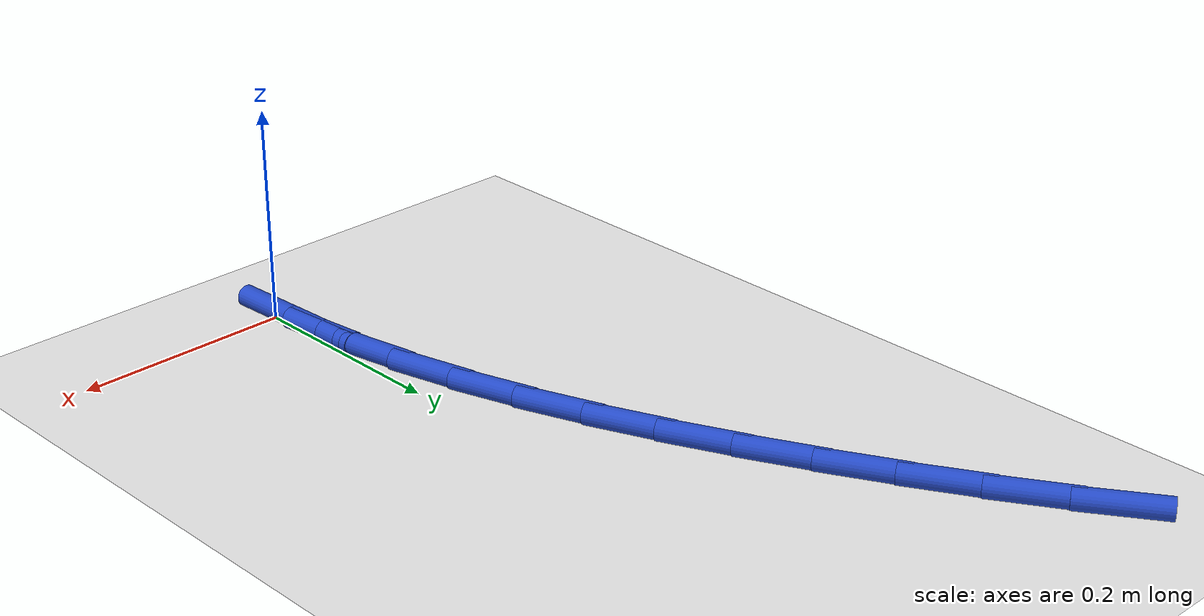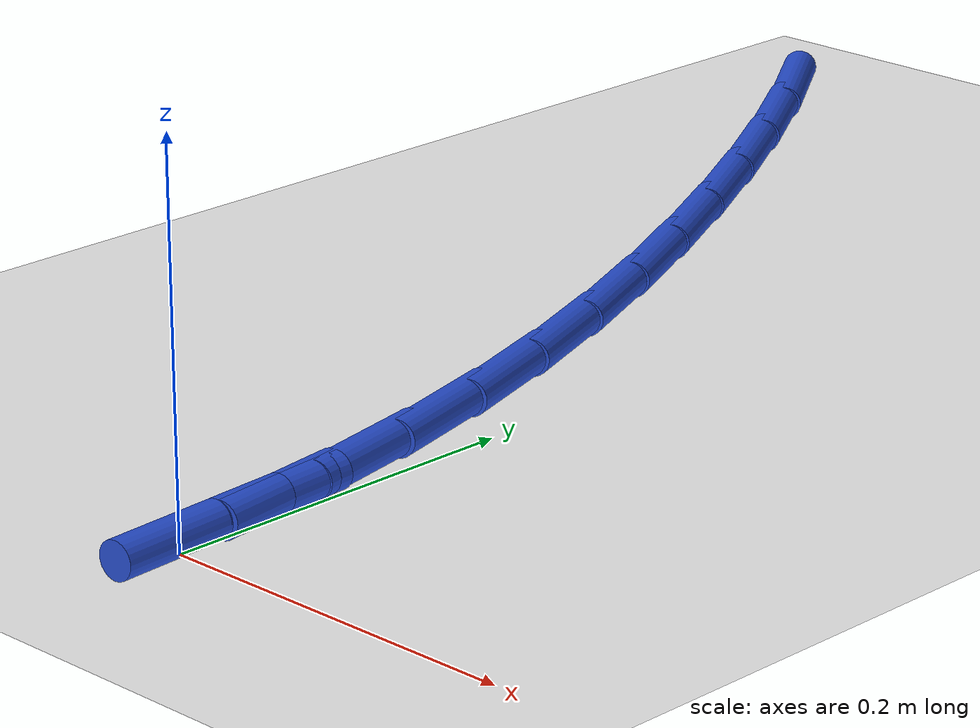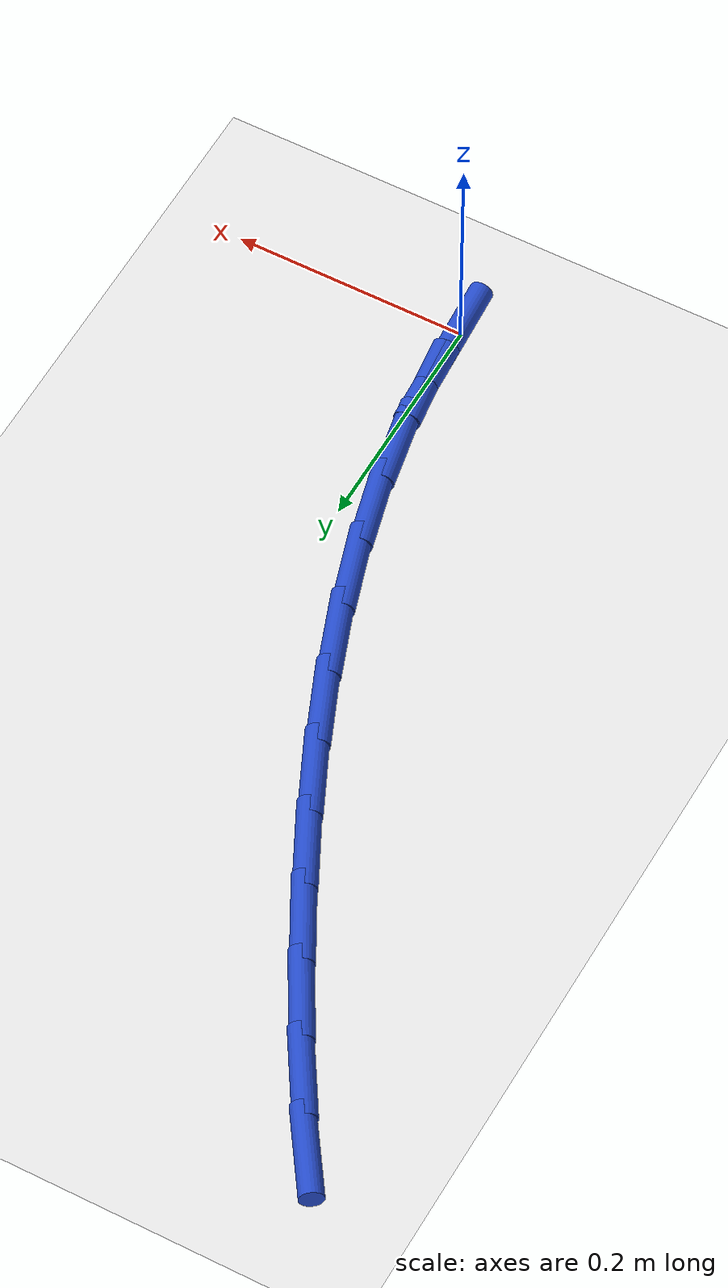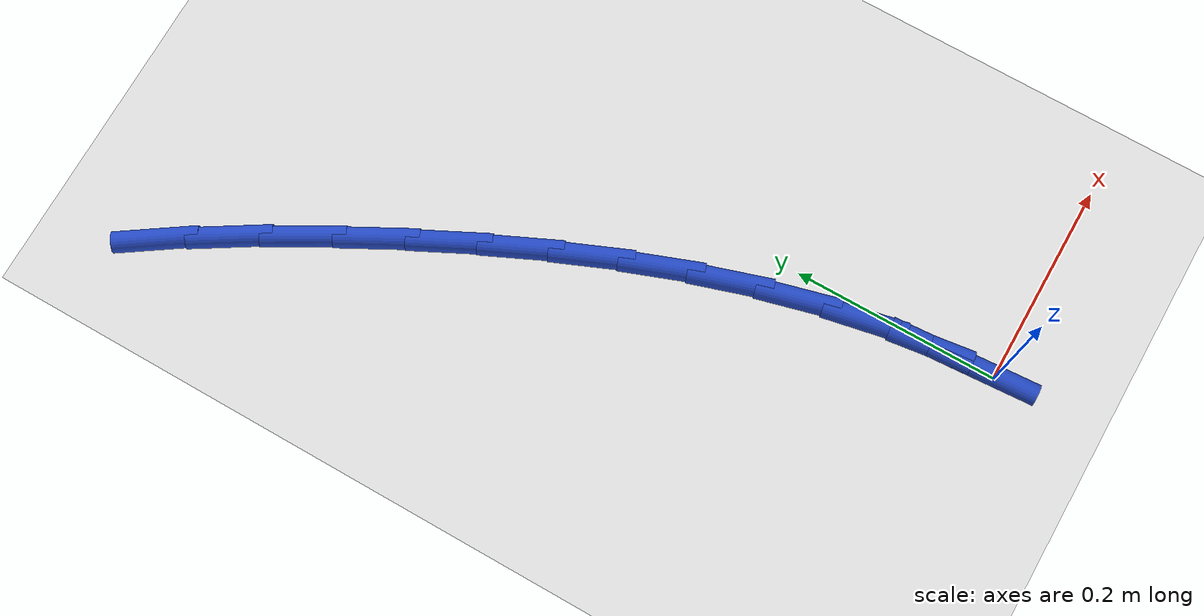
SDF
<sdf version="1.6">
 <world name="default">
  <model name="ground_plane">
   <static>1</static>
   <link name="link">
    <collision name="collision">
     <geometry><plane><normal>0 0 1</normal><size>100 100</size></plane></geometry>
     <surface><friction><ode><mu>100</mu><mu2>50</mu2></ode></friction></surface>
    </collision>
    <visual name="visual">
     <cast_shadows>0</cast_shadows>
     <geometry><plane><normal>0 0 1</normal><size>100 100</size></plane></geometry>
     <material>
      <script><uri>file://media/materials/scripts/gazebo.material</uri><name>Gazebo/WhiteGlow</name></script>
     </material>
    </visual>
   </link>
  </model>
  <model name="line">
   <link name="link_1">
    <pose>-0.00379045577076956 0.06364255817681445 0.01 0 1.57 -1.441906569052137</pose>
    <collision name="collision">
     <geometry><cylinder><radius>0.01</radius><length>0.08</length></cylinder></geometry>
    </collision>
    <visual name="visual">
     <material>
      <script><name>Gazebo/Blue</name><uri>file://media/materials/scripts/gazebo.material</uri></script>
     </material>
     <geometry><cylinder><radius>0.01</radius><length>0.08</length></cylinder></geometry>
    </visual>
   </link>
   <link name="link_2">
    <pose>-0.01193686798468814 0.12649666985539915 0.01 0 1.57 -1.3772078086457762</pose>
    <collision name="collision">
     <geometry><cylinder><radius>0.01</radius><length>0.08</length></cylinder></geometry>
    </collision>
    <visual name="visual">
     <material>
      <script><name>Gazebo/Blue</name><uri>file://media/materials/scripts/gazebo.material</uri></script>
     </material>
     <geometry><cylinder><radius>0.01</radius><length>0.08</length></cylinder></geometry>
    </visual>
   </link>
   <link name="link_3">
    <pose>-0.024120185396621037 0.1886426061059209 0.01 0 1.57 -1.317852693769832</pose>
    <collision name="collision">
     <geometry><cylinder><radius>0.01</radius><length>0.08</length></cylinder></geometry>
    </collision>
    <visual name="visual">
     <material>
      <script><name>Gazebo/Blue</name><uri>file://media/materials/scripts/gazebo.material</uri></script>
     </material>
     <geometry><cylinder><radius>0.01</radius><length>0.08</length></cylinder></geometry>
    </visual>
   </link>
   <link name="link_4">
    <pose>-0.04002135676143365 0.25016063799854676 0.01 0 1.57 -1.2642291098758225</pose>
    <collision name="collision">
     <geometry><cylinder><radius>0.01</radius><length>0.08</length></cylinder></geometry>
    </collision>
    <visual name="visual">
     <material>
      <script><name>Gazebo/Blue</name><uri>file://media/materials/scripts/gazebo.material</uri></script>
     </material>
     <geometry><cylinder><radius>0.01</radius><length>0.08</length></cylinder></geometry>
    </visual>
   </link>
   <link name="link_5">
    <pose>-0.059321330833991374 0.3111310366034435 0.01 0 1.57 -1.216509423073219</pose>
    <collision name="collision">
     <geometry><cylinder><radius>0.01</radius><length>0.08</length></cylinder></geometry>
    </collision>
    <visual name="visual">
     <material>
      <script><name>Gazebo/Blue</name><uri>file://media/materials/scripts/gazebo.material</uri></script>
     </material>
     <geometry><cylinder><radius>0.01</radius><length>0.08</length></cylinder></geometry>
    </visual>
   </link>
   <link name="link_6">
    <pose>-0.0817010563691595 0.371634072990778 0.01 0 1.57 -1.1747002953685999</pose>
    <collision name="collision">
     <geometry><cylinder><radius>0.01</radius><length>0.08</length></cylinder></geometry>
    </collision>
    <visual name="visual">
     <material>
      <script><name>Gazebo/Blue</name><uri>file://media/materials/scripts/gazebo.material</uri></script>
     </material>
     <geometry><cylinder><radius>0.01</radius><length>0.08</length></cylinder></geometry>
    </visual>
   </link>
   <link name="link_7">
    <pose>-0.10684148212180347 0.4317500182307173 0.01 0 1.57 -1.13869372212851</pose>
    <collision name="collision">
     <geometry><cylinder><radius>0.01</radius><length>0.08</length></cylinder></geometry>
    </collision>
    <visual name="visual">
     <material>
      <script><name>Gazebo/Blue</name><uri>file://media/materials/scripts/gazebo.material</uri></script>
     </material>
     <geometry><cylinder><radius>0.01</radius><length>0.08</length></cylinder></geometry>
    </visual>
   </link>
   <link name="link_8">
    <pose>-0.13442355684678864 0.49155914339342816 0.01 0 1.57 -1.1083044324785507</pose>
    <collision name="collision">
     <geometry><cylinder><radius>0.01</radius><length>0.08</length></cylinder></geometry>
    </collision>
    <visual name="visual">
     <material>
      <script><name>Gazebo/Blue</name><uri>file://media/materials/scripts/gazebo.material</uri></script>
     </material>
     <geometry><cylinder><radius>0.01</radius><length>0.08</length></cylinder></geometry>
    </visual>
   </link>
   <link name="link_9">
    <pose>-0.1641285774689779 0.5511412350394355 0.01 0 1.57 -1.0809964195517</pose>
    <collision name="collision">
     <geometry><cylinder><radius>0.01</radius><length>0.08</length></cylinder></geometry>
    </collision>
    <visual name="visual">
     <material>
      <script><name>Gazebo/Blue</name><uri>file://media/materials/scripts/gazebo.material</uri></script>
     </material>
     <geometry><cylinder><radius>0.01</radius><length>0.08</length></cylinder></geometry>
    </visual>
   </link>
   <link name="link_10">
    <pose>-0.19573962858912228 0.6104344330888464 0.01 0 1.57 -1.0509504628436208</pose>
    <collision name="collision">
     <geometry><cylinder><radius>0.01</radius><length>0.08</length></cylinder></geometry>
    </collision>
    <visual name="visual">
     <material>
      <script><name>Gazebo/Blue</name><uri>file://media/materials/scripts/gazebo.material</uri></script>
     </material>
     <geometry><cylinder><radius>0.01</radius><length>0.08</length></cylinder></geometry>
    </visual>
   </link>
   <link name="link_11">
    <pose>-0.2292824714158972 0.6690391712913486 0.01 0 1.57 -1.016983434508413</pose>
    <collision name="collision">
     <geometry><cylinder><radius>0.01</radius><length>0.08</length></cylinder></geometry>
    </collision>
    <visual name="visual">
     <material>
      <script><name>Gazebo/Blue</name><uri>file://media/materials/scripts/gazebo.material</uri></script>
     </material>
     <geometry><cylinder><radius>0.01</radius><length>0.08</length></cylinder></geometry>
    </visual>
   </link>
   <link name="link_12">
    <pose>-0.264818260794932 0.7265066299902333 0.01 0 1.57 -0.9786469006037752</pose>
    <collision name="collision">
     <geometry><cylinder><radius>0.01</radius><length>0.08</length></cylinder></geometry>
    </collision>
    <visual name="visual">
     <material>
      <script><name>Gazebo/Blue</name><uri>file://media/materials/scripts/gazebo.material</uri></script>
     </material>
     <geometry><cylinder><radius>0.01</radius><length>0.08</length></cylinder></geometry>
    </visual>
   </link>
   <link name="link_110">
    <pose>2.7755575615628914e-17 0.0 0.01 0 1.57 -1.5101552133694962</pose>
    <collision name="collision">
     <geometry><cylinder><radius>0.01</radius><length>0.08</length></cylinder></geometry>
    </collision>
    <visual name="visual">
     <material>
      <script><name>Gazebo/Blue</name><uri>file://media/materials/scripts/gazebo.material</uri></script>
     </material>
     <geometry><cylinder><radius>0.01</radius><length>0.08</length></cylinder></geometry>
    </visual>
   </link>
   <link name="link_111">
    <pose>-0.003858115564242811 0.06354410366032939 0.01 0 1.57 -1.5101552133694962</pose>
    <collision name="collision">
     <geometry><cylinder><radius>0.01</radius><length>0.08</length></cylinder></geometry>
    </collision>
    <visual name="visual">
     <material>
      <script><name>Gazebo/Blue</name><uri>file://media/materials/scripts/gazebo.material</uri></script>
     </material>
     <geometry><cylinder><radius>0.01</radius><length>0.08</length></cylinder></geometry>
    </visual>
   </link>
  </model>
 </world>
</sdf>
